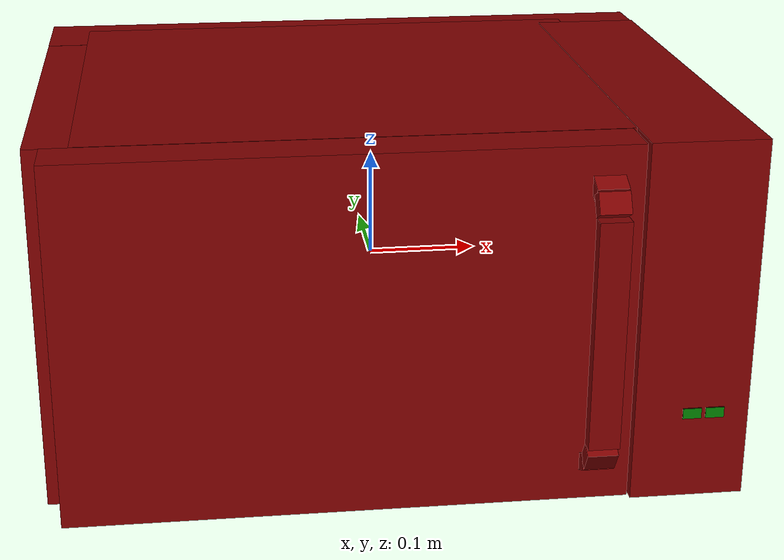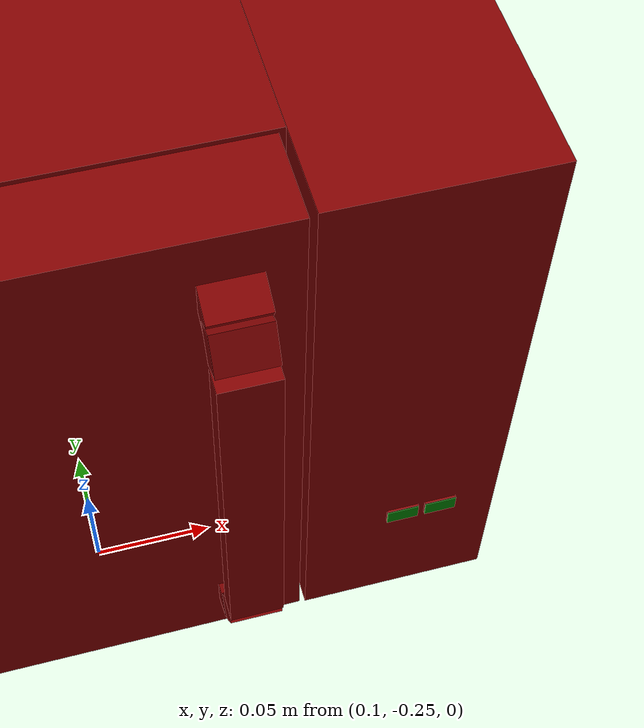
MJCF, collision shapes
<mujoco model="model">
  <compiler angle="radian"/>
  <asset>
    <mesh file="visuals/door.obj" name="door_vis"/>
    <mesh file="visuals/door_Clear.obj" name="door_Clear_vis"/>
    <mesh file="visuals/Body001.obj" name="Body001_vis"/>
    <mesh file="visuals/Button001.obj" name="Button001_vis"/>
    <mesh file="visuals/Button002.obj" name="Button002_vis"/>
    <mesh file="visuals/Disc001.obj" name="Disc001_vis"/>
    <texture file="visuals/T_BC001.png" name="Body001_material" type="2d"/>
    <material name="Body001_material" rgba="1 1 1 1.0" texture="Body001_material" shininess="0.4472135901451111" specular="1"/>
    <texture file="visuals/T_BC001.png" name="door_material" type="2d"/>
    <material name="door_material" rgba="1 1 1 1.0" texture="door_material" shininess="0.4472135901451111" specular="1"/>
    <texture file="visuals/T_BC001.png" name="door_Clear_material" type="2d"/>
    <material name="door_Clear_material" rgba="1 1 1 0.5048109889030457" texture="door_Clear_material" shininess="0.4472135901451111" specular="1"/>
    <texture file="visuals/T_BC001.png" name="Button001_material" type="2d"/>
    <material name="Button001_material" rgba="1 1 1 1.0" texture="Button001_material" shininess="0.4472135901451111" specular="0.3103448502657381"/>
    <texture file="visuals/T_BC001.png" name="Button002_material" type="2d"/>
    <material name="Button002_material" rgba="1 1 1 1.0" texture="Button002_material" shininess="0.4472135901451111" specular="0.3103448502657381"/>
    <texture file="visuals/T_BC001.png" name="Disc001_material" type="2d"/>
    <material name="Disc001_material" rgba="1 1 1 1.0" texture="Disc001_material" shininess="0.4472135901451111" specular="0.3103448502657381"/>
  </asset>
  <default>
    <default class="visual">
      <geom conaffinity="0" contype="0" group="1" type="mesh"/>
    </default>
    <default class="collision">
      <geom group="0" rgba="0.5 0 0 0.5"/>
    </default>
    <default class="spawn">
      <geom group="0" rgba="1 1 1 0.5" contype="0" conaffinity="0"/>
      <site group="0" rgba="1 1 1 0.5"/>
    </default>
    <default class="region">
      <geom group="1" conaffinity="0" contype="0" rgba="0 1 0 0"/>
    </default>
  </default>
  <worldbody>
    <body>
      <body name="object">
        <geom class="collision" type="box" pos="0.2558335065841675 -0.2270517200231552 -0.077196404337883" size="0.008278349414467812 0.00012869271449744701 0.0048247696831822395" quat="1.0 0.0 0.0 0.0" name="stop_button" rgba="0.0 0.5 0 0.5"/>
        <geom class="collision" type="box" pos="0.27611708641052246 -0.2270517200231552 -0.077196404337883" size="0.008278349414467812 0.00012869271449744701 0.0048247696831822395" quat="1.0 0.0 0.0 0.0" name="start_button" rgba="0.0 0.5 0 0.5"/>
        <geom class="collision" type="box" pos="-0.05594849959015846 -0.0057468172162771225 -0.08103357255458832" size="0.16559167206287384 0.16559167206287384 0.0019093493465334177" quat="1.0 0.0 0.0 0.0" name="tray" rgba="0 1 0 0.5"/>
        <geom mesh="Body001_vis" type="mesh" solimp="0.998 0.998 0.001" solref="0.001 1" density="100" friction="0.95 0.3 0.1" class="visual" material="Body001_material"/>
        <geom class="collision" type="box" pos="-0.0001188809983432293 0.21544378995895386 0.005091674160212278" size="0.30732461810112 0.04232821241021156 0.16425922513008118" quat="1.0 0.0 0.0 0.0"/>
        <geom class="collision" type="box" pos="-0.28472697734832764 0.026014002040028572 0.005671135149896145" size="0.02255946584045887 0.20414434373378754 0.1636073738336563" quat="1.0 0.0 0.0 0.0"/>
        <geom class="collision" type="box" pos="0.16784588992595673 0.001137763261795044 0.0036850222386419773" size="0.018292363733053207 0.17986086010932922 0.10030119866132736" quat="1.0 0.0 0.0 0.0"/>
        <geom class="collision" type="box" pos="-0.019035527482628822 0.026110760867595673 0.13713306188583374" size="0.24995987117290497 0.2040475755929947 0.032822828739881516" quat="1.0 0.0 0.0 0.0"/>
        <geom class="collision" type="box" pos="-0.019035527482628822 0.025775250047445297 -0.12743183970451355" size="0.24995987117290497 0.20438310503959656 0.030162308365106583" quat="1.0 0.0 0.0 0.0"/>
        <geom class="collision" type="box" pos="0.2563355565071106 -0.005492217838764191 0.00577513687312603" size="0.05092453211545944 0.21838781237602234 0.16474983096122742" quat="1.0 0.0 0.0 0.0"/>
        <geom class="collision" type="box" pos="-0.2533123791217804 0.026014002040028572 -0.09863829612731934" size="0.004819102119654417 0.20414432883262634 0.008323876187205315" quat="0.8360268473625183 0.0 -0.548688530921936 0.0"/>
        <geom class="collision" type="box" pos="-0.265260249376297 0.026014002040028572 -0.08337397873401642" size="0.004819102119654417 0.20414432883262634 0.00832387525588274" quat="0.9929884076118469 0.0 -0.11821161955595016 0.0"/>
        <geom class="collision" type="box" pos="0.14628393948078156 0.026014002040028572 -0.09480852633714676" size="0.004819102119654417 0.20414432883262634 0.010538837872445583" quat="0.4185052514076233 -0.0 -0.9082143902778625 -0.0"/>
        <geom class="collision" type="box" pos="-0.2603045105934143 -0.00785529613494873 0.010382943786680698" size="0.0015143346972763538 0.12236932665109634 0.07765224575996399" quat="1.0 0.0 0.0 0.0"/>
        <geom class="collision" type="cylinder" pos="-0.25709736347198486 -0.14072929322719574 -0.16337531805038452" size="0.01596785895526409 0.006462896708399057" quat="1.0 0.0 0.0 0.0"/>
        <geom class="collision" type="cylinder" pos="-0.25709736347198486 0.2247695028781891 -0.16337531805038452" size="0.01596785895526409 0.006462896708399057" quat="1.0 0.0 0.0 0.0"/>
        <geom class="collision" type="cylinder" pos="0.2251676619052887 -0.14072929322719574 -0.16337531805038452" size="0.01596785895526409 0.006462896708399057" quat="1.0 0.0 0.0 0.0"/>
        <geom class="collision" type="cylinder" pos="0.2251676619052887 0.2247695028781891 -0.16337531805038452" size="0.01596785895526409 0.006462896708399057" quat="1.0 0.0 0.0 0.0"/>
        <geom class="collision" type="cylinder" pos="-0.25729528069496155 -0.007402664050459862 0.01021210290491581" size="0.06993544101715088 0.004275892395526171" quat="0.7071068286895752 -0.0 0.7071067690849304 0.0"/>
        <body name="door">
          <joint axis="0.0 0.0 1.0" pos="-0.28410083055496216 -0.2039608359336853 0.007674679160118103" limited="true" name="microjoint" range="-1.5707963267948966 0.0" type="hinge" damping="1" frictionloss="1" armature=".01" stiffness="0.05"/>
          <geom mesh="door_vis" type="mesh" solimp="0.998 0.998 0.001" solref="0.001 1" density="100" friction="0.95 0.3 0.1" class="visual" material="door_material"/>
          <geom class="collision" type="box" pos="0.1709490269422531 -0.22614479064941406 0.13600313663482666" size="0.013730996288359165 0.011826192028820515 0.007371276151388884" quat="7.978624694260361e-07 4.85544660477899e-07 0.21992571651935577 -0.9755166172981262"/>
          <geom class="collision" type="box" pos="0.17056700587272644 -0.24207979440689087 0.12521708011627197" size="0.013459151610732079 0.009619472548365593 0.007003596052527428" quat="9.783089893744545e-08 -6.861492352072673e-07 -0.5084688067436218 0.8610804080963135"/>
          <geom class="collision" type="box" pos="0.1708306074142456 -0.22619859874248505 -0.1181105300784111" size="0.013849417679011822 0.011826192028820515 0.007371276151388884" quat="0.9755166172981262 -0.21992571651935577 4.951577921019634e-07 7.552214924544387e-07"/>
          <geom class="collision" type="box" pos="0.17077845335006714 -0.24193605780601501 -0.10503187775611877" size="0.013552192598581314 0.010710924863815308 0.007003594655543566" quat="0.8741090893745422 -0.4857296347618103 8.203318770938495e-07 -4.0377560850402006e-08"/>
          <geom class="collision" type="box" pos="-0.045477744191884995 -0.2028736025094986 0.007733275182545185" size="0.24714142084121704 0.022283704951405525 0.1627272516489029" quat="1.9470718370939721e-07 -0.0 -1.0 -0.0"/>
          <geom class="collision" type="box" pos="0.17070449888706207 -0.24871531128883362 0.010706077329814434" size="0.013786937110126019 0.006507383659482002 0.10332798957824707" quat="1.0 0.0 0.0 0.0" name="door_handle"/>
          <body name="door_Clear">
            <geom mesh="door_Clear_vis" type="mesh" solimp="0.998 0.998 0.001" solref="0.001 1" density="100" friction="0.95 0.3 0.1" class="visual" material="door_Clear_material"/>
            <geom class="collision" type="box" pos="-0.05948027968406677 -0.2017262876033783 0.006526961922645569" size="0.1989602893590927 0.02222611755132675 0.10525315254926682" quat="1.9470718370939721e-07 -0.0 -1.0 -0.0"/>
          </body>
        </body>
        <body name="Button001">
          <joint axis="0.0 1.0 0.0" pos="0.25587910413742065 -0.22499997913837433 -0.07714299857616425" limited="true" name="Button001_joint" range="0.0 0.0023" type="slide" damping="1" frictionloss="1" armature=".01" stiffness="0.05"/>
          <geom mesh="Button001_vis" type="mesh" solimp="0.998 0.998 0.001" solref="0.001 1" density="100" friction="0.95 0.3 0.1" class="visual" material="Button001_material"/>
          <geom class="collision" type="box" pos="0.2558335065841675 -0.22589631378650665 -0.077196404337883" size="0.008278349414467812 0.0005221769097261131 0.0048247696831822395" quat="1.0 0.0 0.0 0.0"/>
        </body>
        <body name="Button002">
          <joint axis="0.0 1.0 0.0" pos="0.2761697471141815 -0.22499997913837433 -0.07717008888721466" limited="true" name="Button002_joint" range="0.0 0.0023" type="slide" damping="1" frictionloss="1" armature=".01" stiffness="0.05"/>
          <geom mesh="Button002_vis" type="mesh" solimp="0.998 0.998 0.001" solref="0.001 1" density="100" friction="0.95 0.3 0.1" class="visual" material="Button002_material"/>
          <geom class="collision" type="box" pos="0.27611708641052246 -0.22589631378650665 -0.077196404337883" size="0.008278349414467812 0.0005221769097261131 0.0048247696831822395" quat="1.0 0.0 0.0 0.0"/>
        </body>
        <body name="Disc001">
          <joint axis="0.0 0.0 1.0" pos="-0.05591420829296112 -0.007768906652927399 -0.0899733379483223" limited="false" name="Disc001_joint" range="0 360" type="hinge" damping="1" frictionloss="1" armature=".01" stiffness="0.05"/>
          <geom mesh="Disc001_vis" type="mesh" solimp="0.998 0.998 0.001" solref="0.001 1" density="100" friction="0.95 0.3 0.1" class="visual" material="Disc001_material"/>
          <geom class="collision" type="cylinder" pos="-0.05594849959015846 -0.0057468172162771225 -0.08916030824184418" size="0.16559167206287384 0.0024775105994194746" quat="1.0 0.0 0.0 0.0"/>
        </body>
        <geom class="region" name="reg_main" type="box" pos="0.0 0.01493605226278305 0.0" size="0.30696171522140503 0.24000874161720276 0.16926884651184082"/>
        <geom class="region" name="reg_int" type="box" pos="-0.05627980828285217 -0.0011810064315795898 0.006724812090396881" size="0.2009560763835907 0.17588932812213898 0.09897515177726746"/>
      </body>
    </body>
  </worldbody>
  <actuator>
    <motor name="microjoint_actuator" joint="microjoint" gear="10"/>
    <motor name="Button001_joint_actuator" joint="Button001_joint" gear="0.5"/>
    <motor name="Button002_joint_actuator" joint="Button002_joint" gear="0.5"/>
    <motor name="Disc001_joint_actuator" joint="Disc001_joint" gear="50"/>
  </actuator>
</mujoco>
